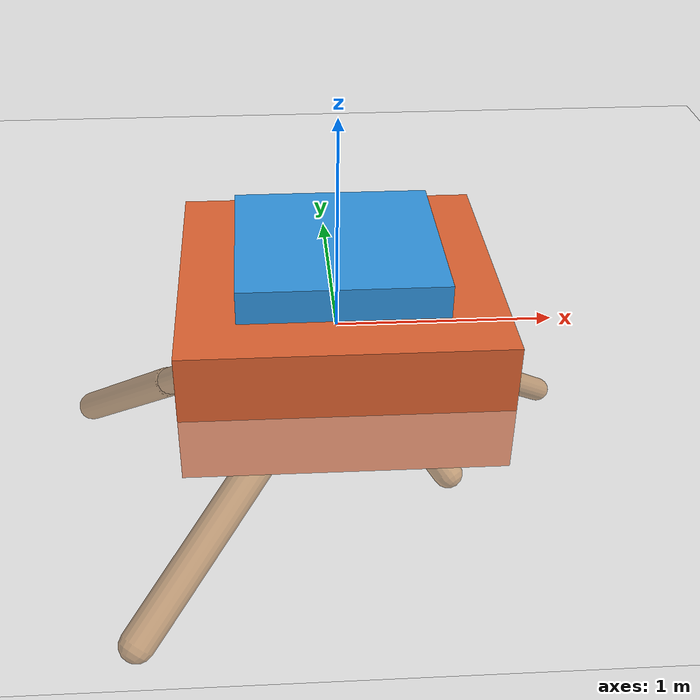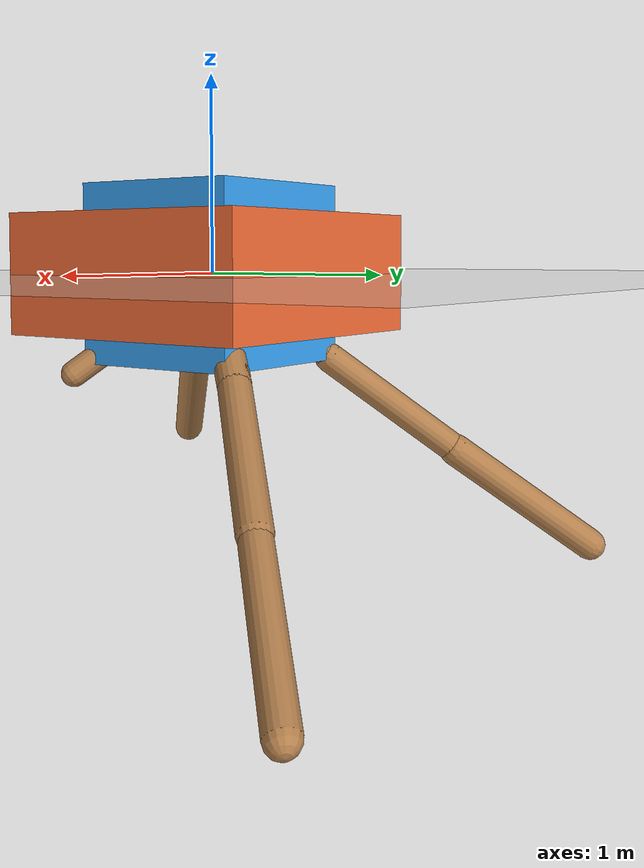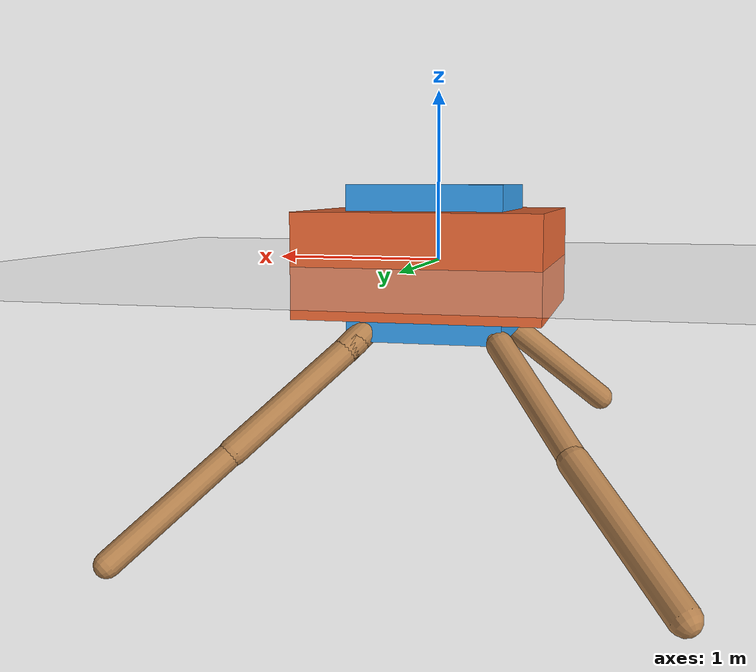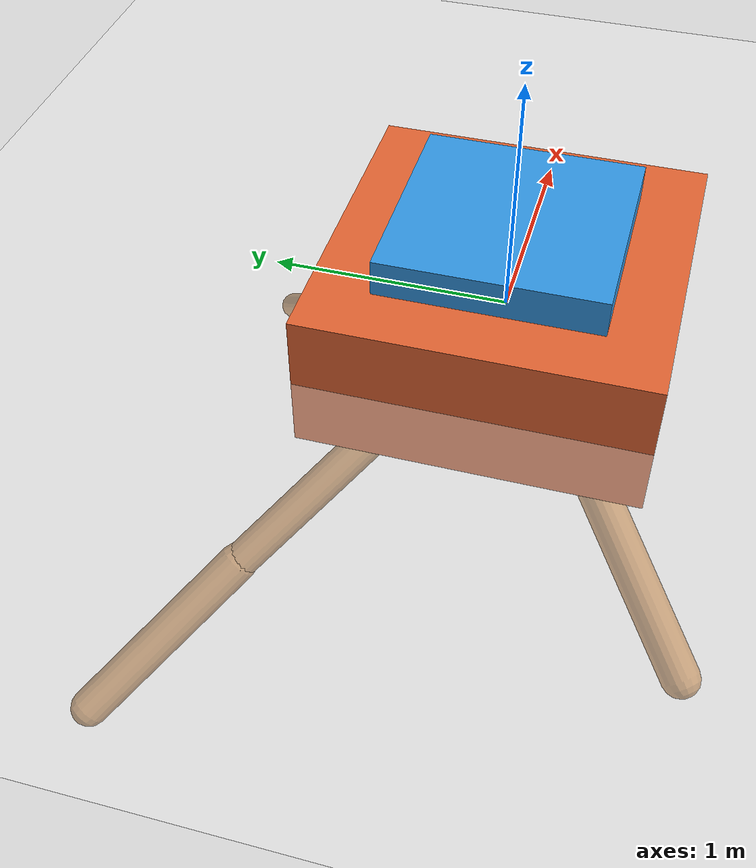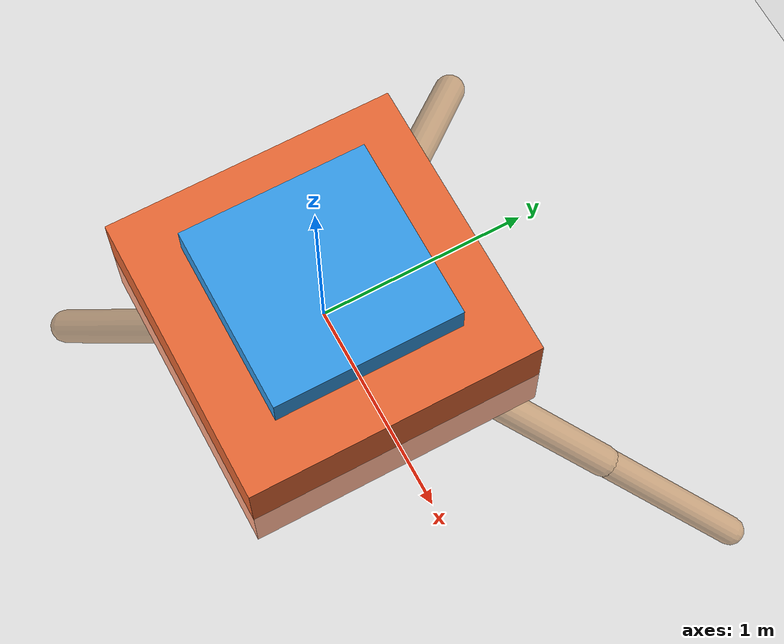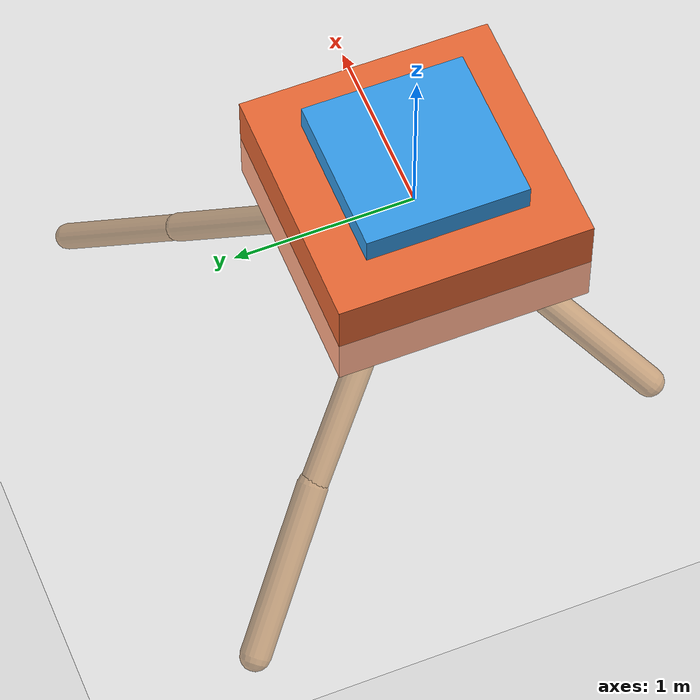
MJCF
<mujoco model="dex-gripper">
  <asset>
    <texture name="skybox" type="skybox" builtin="gradient" rgb1=".2 .3 .4" rgb2="0 0 0" width="800" height="800" mark="random" markrgb="1 1 1"/>
    <texture name="grid" type="2d" builtin="checker" rgb1=".2 .1 .2" rgb2=".3 .2 .3" width="300" height="300" mark="edge" markrgb=".3 .2 .3"/>
    <material name="grid" texture="grid" texrepeat="1 1" texuniform="true" reflectance=".2"/>
    <material name="self" rgba=".7 .5 .3 1"/>
  </asset>
  <visual>
    <headlight ambient=".4 .4 .4" diffuse=".8 .8 .8" specular="0.1 0.1 0.1"/>
    <map znear=".001"/>
    <quality shadowsize="16384"/>
  </visual>
  <compiler angle="degree" coordinate="global" inertiafromgeom="true"/>
  <option integrator="RK4" timestep="0.01"/>
  <default>
    <joint armature="1" damping="1" limited="true"/>
    <geom conaffinity="0" condim="3" density="5.0" friction="1 0.5 0.5" margin="0.01" rgba=".7 .5 .3 1"/>
  </default>
  <worldbody>
    <light cutoff="100" diffuse="1 1 1" dir="0.3 0 -1.3" directional="true" exponent="1" pos="-30 0 130" specular=".1 .1 .1"/>
    <geom conaffinity="1" condim="3" name="floor" pos="0 0 0" rgba="1 1 1 1" size="200 200 .125" type="plane" material="grid"/>
    <body name="0" pos="0 0 0" gravcomp="1">
      <camera name="track" mode="fixed" pos="0 10 5" quat="0 0 0.547 0.892"/>
      <geom pos="0 0 0" size="0.268241 0.215987 0.185094" type="ellipsoid"/>
      <joint name="root_x" type="slide" axis="1 0 0" pos="0 0 0" limited="false" armature="0" damping="0"/>
      <joint name="root_y" type="slide" axis="0 1 0" pos="0 0 0" limited="false" armature="0" damping="0"/>
      <joint name="root_z" type="slide" axis="0 0 1" pos="0 0 0" limited="false" armature="0" damping="0"/>
      <body name="1" pos="0 0 0" gravcomp="1">
        <joint axis="-0.707107 0.707107 0" name="1_joint" pos="0 0 0" range="-30 30" type="hinge" damping="0"/>
        <geom fromto="-0.050544 -0.057111 0.057242 0.441495 0.498854 -0.5" size="0.080041 0.080041 0.080041" type="capsule"/>
        <body name="11" pos="0.441495 0.498854 -0.5" gravcomp="1">
          <joint axis="-0.707107 0.707107 0" name="11_joint" pos="0.441495 0.498854 -0.5" range="-30 30" type="hinge" damping="0"/>
          <geom fromto="0.38887 0.445832 -0.44684 0.93646 0.997565 -1" size="0.078795 0.078795 0.078795" type="capsule"/>
          <body name="111" pos="0.93646 0.997565 -1" gravcomp="1">
            <joint axis="-0.707107 0.707107 0" name="111_joint" pos="0.93646 0.997565 -1" range="-30 30" type="hinge" damping="0"/>
            <geom fromto="0.872957 0.933977 -0.936082 1.433209 1.494981 -1.5" size="0.072775 0.072775 0.072775" type="capsule"/>
          </body>
        </body>
        <body name="21" pos="0.441495 0.498854 -0.5" gravcomp="1">
          <joint axis="-0.707107 0.707107 0" name="21_joint" pos="0.441495 0.498854 -0.5" range="-30 30" type="hinge" damping="0"/>
          <geom fromto="0.36309 0.419826 -0.420493 0.934557 0.995842 -1" size="0.065796 0.065796 0.065796" type="capsule"/>
        </body>
      </body>
      <body name="2" pos="0 0 0" gravcomp="1">
        <joint axis="-0.707107 -0.707107 0" name="2_joint" pos="0 0 0" range="-30 30" type="hinge" damping="0"/>
        <geom fromto="0.048693 -0.04776 0.049492 -0.491924 0.482498 -0.5" size="0.062042 0.062042 0.062042" type="capsule"/>
        <body name="12" pos="-0.491924 0.482498 -0.5" gravcomp="1">
          <joint axis="-0.707107 -0.707107 0" name="12_joint" pos="-0.491924 0.482498 -0.5" range="-30 30" type="hinge" damping="0"/>
          <geom fromto="-0.439111 0.42446 -0.441948 -0.946803 0.982378 -1" size="0.077427 0.077427 0.077427" type="capsule"/>
          <body name="112" pos="-0.946803 0.982378 -1" gravcomp="1">
            <joint axis="-0.707107 -0.707107 0" name="112_joint" pos="-0.946803 0.982378 -1" range="-30 30" type="hinge" damping="0"/>
            <geom fromto="-0.892517 0.928605 -0.945512 -1.444947 1.475822 -1.5" size="0.085433 0.085433 0.085433" type="capsule"/>
          </body>
          <body name="212" pos="-0.946803 0.982378 -1" gravcomp="1">
            <joint axis="-0.707107 -0.707107 0" name="212_joint" pos="-0.946803 0.982378 -1" range="-30 30" type="hinge" damping="0"/>
            <geom fromto="-0.882763 0.918811 -0.935649 -1.444385 1.476288 -1.5" size="0.076691 0.076691 0.076691" type="capsule"/>
          </body>
        </body>
      </body>
      <body name="3" pos="0 0 0" gravcomp="1">
        <joint axis="0.707107 -0.707107 0" name="3_joint" pos="0 0 0" range="-30 30" type="hinge" damping="0"/>
        <geom fromto="0.043076 0.049124 0.049351 -0.436421 -0.497696 -0.5" size="0.067928 0.067928 0.067928" type="capsule"/>
        <body name="13" pos="-0.436421 -0.497696 -0.5" gravcomp="1">
          <joint axis="0.707107 -0.707107 0" name="13_joint" pos="-0.436421 -0.497696 -0.5" range="-30 30" type="hinge" damping="0"/>
          <geom fromto="-0.380806 -0.442789 -0.444307 -0.935727 -0.990641 -1" size="0.082714 0.082714 0.082714" type="capsule"/>
        </body>
        <body name="23" pos="-0.436421 -0.497696 -0.5" gravcomp="1">
          <joint axis="0.707107 -0.707107 0" name="23_joint" pos="-0.436421 -0.497696 -0.5" range="-30 30" type="hinge" damping="0"/>
          <geom fromto="-0.369018 -0.429796 -0.432091 -0.93269 -0.997621 -1" size="0.067464 0.067464 0.067464" type="capsule"/>
        </body>
      </body>
      <body name="4" pos="0 0 0" gravcomp="1">
        <joint axis="0.707107 0.707107 0" name="4_joint" pos="0 0 0" range="-30 30" type="hinge" damping="0"/>
        <geom fromto="-0.061062 0.064097 0.064098 0.476316 -0.499993 -0.5" size="0.066777 0.066777 0.066777" type="capsule"/>
      </body>
    </body>
    <body name="box_1" pos="0 0 0">
      <freejoint name="box_1_joint"/>
      <geom name="box_1" type="box" size="0.45 0.45 0.45" rgba="0.2 0.6 0.9 1.0" contype="1" conaffinity="1" density="10" friction="2.5 0.1 0.05"/>
    </body>
    <body name="box_2" pos="3.0 0 0.425">
      <freejoint name="box_2_joint"/>
      <geom name="box_2" type="box" size="0.7 0.7 0.3" rgba="0.9 0.4 0.2 1.0" contype="1" conaffinity="1" density="10" friction="2.5 0.1 0.05"/>
    </body>
  </worldbody>
  <actuator>
    <motor name="root_x_motor" joint="root_x" gear="50" ctrllimited="true" ctrlrange="-1 1"/>
    <motor name="root_y_motor" joint="root_y" gear="50" ctrllimited="true" ctrlrange="-1 1"/>
    <motor name="root_z_motor" joint="root_z" gear="50" ctrllimited="true" ctrlrange="-1 1"/>
    <motor ctrllimited="true" ctrlrange="-1.0 1.0" joint="1_joint" gear="21.124305" name="1_joint"/>
    <motor ctrllimited="true" ctrlrange="-1.0 1.0" joint="2_joint" gear="44.818002" name="2_joint"/>
    <motor ctrllimited="true" ctrlrange="-1.0 1.0" joint="3_joint" gear="29.821089" name="3_joint"/>
    <motor ctrllimited="true" ctrlrange="-1.0 1.0" joint="4_joint" gear="73.711529" name="4_joint"/>
    <motor ctrllimited="true" ctrlrange="-1.0 1.0" joint="11_joint" gear="37.047652" name="11_joint"/>
    <motor ctrllimited="true" ctrlrange="-1.0 1.0" joint="12_joint" gear="59.10434" name="12_joint"/>
    <motor ctrllimited="true" ctrlrange="-1.0 1.0" joint="13_joint" gear="36.97285" name="13_joint"/>
    <motor ctrllimited="true" ctrlrange="-1.0 1.0" joint="21_joint" gear="62.54902" name="21_joint"/>
    <motor ctrllimited="true" ctrlrange="-1.0 1.0" joint="23_joint" gear="39.963834" name="23_joint"/>
    <motor ctrllimited="true" ctrlrange="-1.0 1.0" joint="112_joint" gear="60.385916" name="112_joint"/>
    <motor ctrllimited="true" ctrlrange="-1.0 1.0" joint="212_joint" gear="63.706729" name="212_joint"/>
    <motor ctrllimited="true" ctrlrange="-1.0 1.0" joint="111_joint" gear="59.088185" name="111_joint"/>
  </actuator>
</mujoco>
